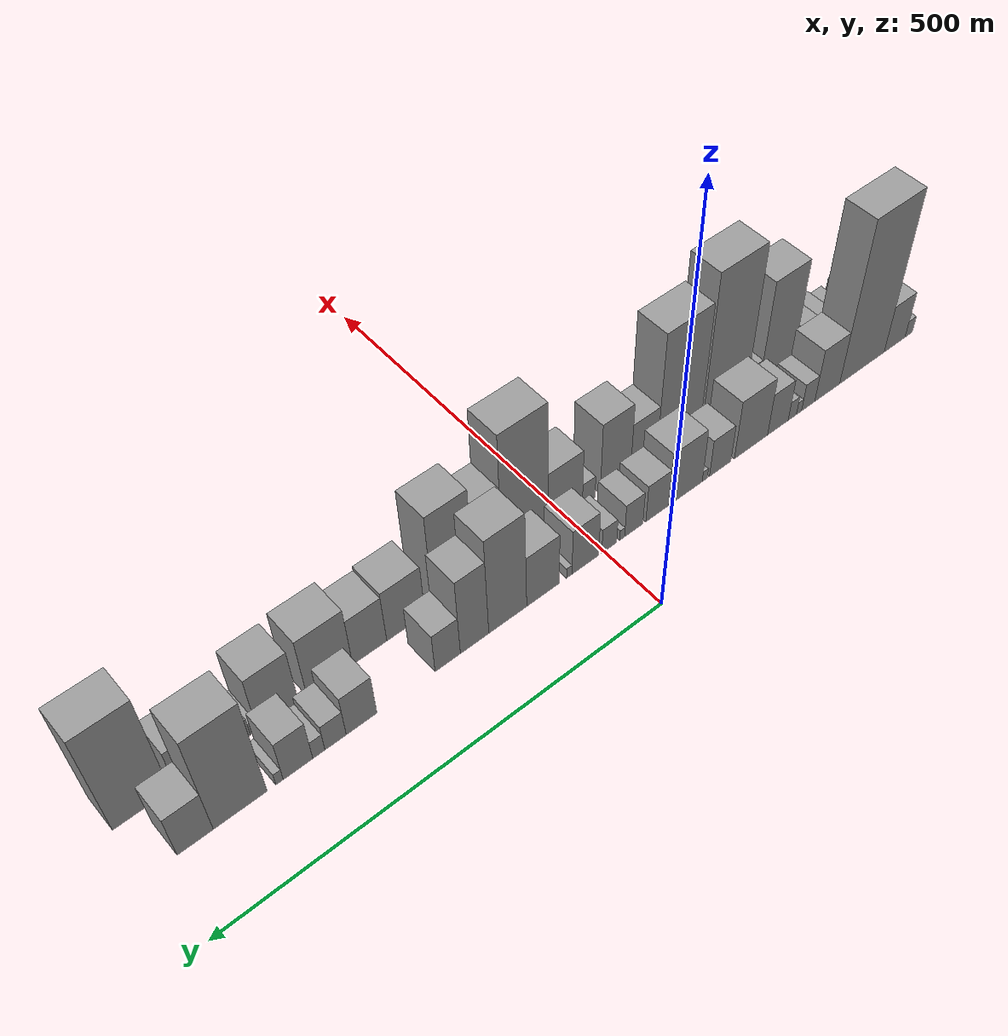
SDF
<sdf version="1.6">
 <world name="default">
  <scene>
   <sky><clouds><speed>12</speed></clouds></sky>
   <ambient>0.4 0.4 0.4 1</ambient>
   <background>0.7 0.7 0.7 1</background>
   <shadows>1</shadows>
  </scene>
  <gravity>0 0 -9.8066</gravity>
  <magnetic_field>6e-06 2.3e-05 -4.2e-05</magnetic_field>
  <physics default="0" name="default_physics" type="ode">
   <ode>
    <solver>
     <type>quick</type>
     <iters>10</iters>
     <sor>1.0</sor>
     <use_dynamic_moi_rescaling>0</use_dynamic_moi_rescaling>
    </solver>
    <constraints>
     <cfm>0</cfm>
     <erp>0.2</erp>
     <contact_max_correcting_vel>100</contact_max_correcting_vel>
     <contact_surface_layer>0.001</contact_surface_layer>
    </constraints>
   </ode>
   <max_step_size>0.004</max_step_size>
   <real_time_factor>1</real_time_factor>
   <real_time_update_rate>250</real_time_update_rate>
  </physics>
  <light name="sun" type="directional">
   <pose>0 0 10 0 0 0</pose>
   <diffuse>0.8 0.8 0.8 1</diffuse>
   <specular>0.2 0.2 0.2 1</specular>
   <attenuation>
    <range>1000</range>
    <constant>0.9</constant>
    <linear>0.01</linear>
    <quadratic>0.001</quadratic>
   </attenuation>
   <direction>-0.5 0.1 -0.9</direction>
  </light>
  <model name="building_1">
   <static>1</static>
   <pose>100.0000 -444.0386 0 0.000000 0.000000 0.000000</pose>
   <link name="link">
    <pose>0 0 12.00 0 0 0</pose>
    <collision name="collision"><geometry><box><size>40.0000 11.9228 24.0000</size></box></geometry></collision>
    <visual name="visual">
     <cast_shadows>0</cast_shadows>
     <geometry><box><size>40.0000 11.9228 24.0000</size></box></geometry>
     <material>
      <script>
       <uri>model://grey_wall/materials/scripts</uri>
       <uri>model://grey_wall/materials/textures</uri>
       <name>vrc/grey_wall</name>
      </script>
     </material>
    </visual>
   </link>
  </model>
  <model name="building_2">
   <static>1</static>
   <pose>100.0000 -421.1653 0 0.000000 0.000000 0.000000</pose>
   <link name="link">
    <pose>0 0 33.00 0 0 0</pose>
    <collision name="collision"><geometry><box><size>40.0000 33.8239 66.0000</size></box></geometry></collision>
    <visual name="visual">
     <cast_shadows>0</cast_shadows>
     <geometry><box><size>40.0000 33.8239 66.0000</size></box></geometry>
     <material>
      <script>
       <uri>model://grey_wall/materials/scripts</uri>
       <uri>model://grey_wall/materials/textures</uri>
       <name>vrc/grey_wall</name>
      </script>
     </material>
    </visual>
   </link>
  </model>
  <model name="building_3">
   <static>1</static>
   <pose>100.0000 -369.1145 0 0.000000 0.000000 0.000000</pose>
   <link name="link">
    <pose>0 0 111.00 0 0 0</pose>
    <collision name="collision"><geometry><box><size>40.0000 70.2777 222.0000</size></box></geometry></collision>
    <visual name="visual">
     <cast_shadows>0</cast_shadows>
     <geometry><box><size>40.0000 70.2777 222.0000</size></box></geometry>
     <material>
      <script>
       <uri>model://grey_wall/materials/scripts</uri>
       <uri>model://grey_wall/materials/textures</uri>
       <name>vrc/grey_wall</name>
      </script>
     </material>
    </visual>
   </link>
  </model>
  <model name="building_4">
   <static>1</static>
   <pose>100.0000 -314.7945 0 0.000000 0.000000 0.000000</pose>
   <link name="link">
    <pose>0 0 37.50 0 0 0</pose>
    <collision name="collision"><geometry><box><size>40.0000 38.3623 75.0000</size></box></geometry></collision>
    <visual name="visual">
     <cast_shadows>0</cast_shadows>
     <geometry><box><size>40.0000 38.3623 75.0000</size></box></geometry>
     <material>
      <script>
       <uri>model://grey_wall/materials/scripts</uri>
       <uri>model://grey_wall/materials/textures</uri>
       <name>vrc/grey_wall</name>
      </script>
     </material>
    </visual>
   </link>
  </model>
  <model name="building_5">
   <static>1</static>
   <pose>100.0000 -285.6695 0 0.000000 0.000000 0.000000</pose>
   <link name="link">
    <pose>0 0 19.50 0 0 0</pose>
    <collision name="collision"><geometry><box><size>40.0000 19.8878 39.0000</size></box></geometry></collision>
    <visual name="visual">
     <cast_shadows>0</cast_shadows>
     <geometry><box><size>40.0000 19.8878 39.0000</size></box></geometry>
     <material>
      <script>
       <uri>model://grey_wall/materials/scripts</uri>
       <uri>model://grey_wall/materials/textures</uri>
       <name>vrc/grey_wall</name>
      </script>
     </material>
    </visual>
   </link>
  </model>
  <model name="building_6">
   <static>1</static>
   <pose>100.0000 -271.8458 0 0.000000 0.000000 0.000000</pose>
   <link name="link">
    <pose>0 0 9.00 0 0 0</pose>
    <collision name="collision"><geometry><box><size>40.0000 7.7594 18.0000</size></box></geometry></collision>
    <visual name="visual">
     <cast_shadows>0</cast_shadows>
     <geometry><box><size>40.0000 7.7594 18.0000</size></box></geometry>
     <material>
      <script>
       <uri>model://grey_wall/materials/scripts</uri>
       <uri>model://grey_wall/materials/textures</uri>
       <name>vrc/grey_wall</name>
      </script>
     </material>
    </visual>
   </link>
  </model>
  <model name="building_7">
   <static>1</static>
   <pose>100.0000 -261.7881 0 0.000000 0.000000 0.000000</pose>
   <link name="link">
    <pose>0 0 13.50 0 0 0</pose>
    <collision name="collision"><geometry><box><size>40.0000 12.3560 27.0000</size></box></geometry></collision>
    <visual name="visual">
     <cast_shadows>0</cast_shadows>
     <geometry><box><size>40.0000 12.3560 27.0000</size></box></geometry>
     <material>
      <script>
       <uri>model://grey_wall/materials/scripts</uri>
       <uri>model://grey_wall/materials/textures</uri>
       <name>vrc/grey_wall</name>
      </script>
     </material>
    </visual>
   </link>
  </model>
  <model name="building_8">
   <static>1</static>
   <pose>100.0000 -240.3838 0 0.000000 0.000000 0.000000</pose>
   <link name="link">
    <pose>0 0 30.00 0 0 0</pose>
    <collision name="collision"><geometry><box><size>40.0000 30.4526 60.0000</size></box></geometry></collision>
    <visual name="visual">
     <cast_shadows>0</cast_shadows>
     <geometry><box><size>40.0000 30.4526 60.0000</size></box></geometry>
     <material>
      <script>
       <uri>model://grey_wall/materials/scripts</uri>
       <uri>model://grey_wall/materials/textures</uri>
       <name>vrc/grey_wall</name>
      </script>
     </material>
    </visual>
   </link>
  </model>
  <model name="building_9">
   <static>1</static>
   <pose>100.0000 -201.1493 0 0.000000 0.000000 0.000000</pose>
   <link name="link">
    <pose>0 0 42.00 0 0 0</pose>
    <collision name="collision"><geometry><box><size>40.0000 48.0162 84.0000</size></box></geometry></collision>
    <visual name="visual">
     <cast_shadows>0</cast_shadows>
     <geometry><box><size>40.0000 48.0162 84.0000</size></box></geometry>
     <material>
      <script>
       <uri>model://grey_wall/materials/scripts</uri>
       <uri>model://grey_wall/materials/textures</uri>
       <name>vrc/grey_wall</name>
      </script>
     </material>
    </visual>
   </link>
  </model>
  <model name="building_10">
   <static>1</static>
   <pose>100.0000 -157.0162 0 0.000000 0.000000 0.000000</pose>
   <link name="link">
    <pose>0 0 27.00 0 0 0</pose>
    <collision name="collision"><geometry><box><size>40.0000 30.2501 54.0000</size></box></geometry></collision>
    <visual name="visual">
     <cast_shadows>0</cast_shadows>
     <geometry><box><size>40.0000 30.2501 54.0000</size></box></geometry>
     <material>
      <script>
       <uri>model://grey_wall/materials/scripts</uri>
       <uri>model://grey_wall/materials/textures</uri>
       <name>vrc/grey_wall</name>
      </script>
     </material>
    </visual>
   </link>
  </model>
  <model name="building_11">
   <static>1</static>
   <pose>100.0000 -135.2753 0 0.000000 0.000000 0.000000</pose>
   <link name="link">
    <pose>0 0 7.50 0 0 0</pose>
    <collision name="collision"><geometry><box><size>40.0000 7.2317 15.0000</size></box></geometry></collision>
    <visual name="visual">
     <cast_shadows>0</cast_shadows>
     <geometry><box><size>40.0000 7.2317 15.0000</size></box></geometry>
     <material>
      <script>
       <uri>model://grey_wall/materials/scripts</uri>
       <uri>model://grey_wall/materials/textures</uri>
       <name>vrc/grey_wall</name>
      </script>
     </material>
    </visual>
   </link>
  </model>
  <model name="building_12">
   <static>1</static>
   <pose>100.0000 -108.6396 0 0.000000 0.000000 0.000000</pose>
   <link name="link">
    <pose>0 0 39.00 0 0 0</pose>
    <collision name="collision"><geometry><box><size>40.0000 46.0396 78.0000</size></box></geometry></collision>
    <visual name="visual">
     <cast_shadows>0</cast_shadows>
     <geometry><box><size>40.0000 46.0396 78.0000</size></box></geometry>
     <material>
      <script>
       <uri>model://grey_wall/materials/scripts</uri>
       <uri>model://grey_wall/materials/textures</uri>
       <name>vrc/grey_wall</name>
      </script>
     </material>
    </visual>
   </link>
  </model>
  <model name="building_13">
   <static>1</static>
   <pose>100.0000 -70.2083 0 0.000000 0.000000 0.000000</pose>
   <link name="link">
    <pose>0 0 27.00 0 0 0</pose>
    <collision name="collision"><geometry><box><size>40.0000 30.8231 54.0000</size></box></geometry></collision>
    <visual name="visual">
     <cast_shadows>0</cast_shadows>
     <geometry><box><size>40.0000 30.8231 54.0000</size></box></geometry>
     <material>
      <script>
       <uri>model://grey_wall/materials/scripts</uri>
       <uri>model://grey_wall/materials/textures</uri>
       <name>vrc/grey_wall</name>
      </script>
     </material>
    </visual>
   </link>
  </model>
  <model name="building_14">
   <static>1</static>
   <pose>100.0000 -38.7486 0 0.000000 0.000000 0.000000</pose>
   <link name="link">
    <pose>0 0 24.00 0 0 0</pose>
    <collision name="collision"><geometry><box><size>40.0000 24.0963 48.0000</size></box></geometry></collision>
    <visual name="visual">
     <cast_shadows>0</cast_shadows>
     <geometry><box><size>40.0000 24.0963 48.0000</size></box></geometry>
     <material>
      <script>
       <uri>model://grey_wall/materials/scripts</uri>
       <uri>model://grey_wall/materials/textures</uri>
       <name>vrc/grey_wall</name>
      </script>
     </material>
    </visual>
   </link>
  </model>
  <model name="building_15">
   <static>1</static>
   <pose>100.0000 -23.4992 0 0.000000 0.000000 0.000000</pose>
   <link name="link">
    <pose>0 0 7.50 0 0 0</pose>
    <collision name="collision"><geometry><box><size>40.0000 6.4025 15.0000</size></box></geometry></collision>
    <visual name="visual">
     <cast_shadows>0</cast_shadows>
     <geometry><box><size>40.0000 6.4025 15.0000</size></box></geometry>
     <material>
      <script>
       <uri>model://grey_wall/materials/scripts</uri>
       <uri>model://grey_wall/materials/textures</uri>
       <name>vrc/grey_wall</name>
      </script>
     </material>
    </visual>
   </link>
  </model>
  <model name="building_16">
   <static>1</static>
   <pose>100.0000 -6.6108 0 0.000000 0.000000 0.000000</pose>
   <link name="link">
    <pose>0 0 18.00 0 0 0</pose>
    <collision name="collision"><geometry><box><size>40.0000 19.3743 36.0000</size></box></geometry></collision>
    <visual name="visual">
     <cast_shadows>0</cast_shadows>
     <geometry><box><size>40.0000 19.3743 36.0000</size></box></geometry>
     <material>
      <script>
       <uri>model://grey_wall/materials/scripts</uri>
       <uri>model://grey_wall/materials/textures</uri>
       <name>vrc/grey_wall</name>
      </script>
     </material>
    </visual>
   </link>
  </model>
  <model name="building_17">
   <static>1</static>
   <pose>100.0000 24.1132 0 0.000000 0.000000 0.000000</pose>
   <link name="link">
    <pose>0 0 33.00 0 0 0</pose>
    <collision name="collision"><geometry><box><size>40.0000 34.0737 66.0000</size></box></geometry></collision>
    <visual name="visual">
     <cast_shadows>0</cast_shadows>
     <geometry><box><size>40.0000 34.0737 66.0000</size></box></geometry>
     <material>
      <script>
       <uri>model://grey_wall/materials/scripts</uri>
       <uri>model://grey_wall/materials/textures</uri>
       <name>vrc/grey_wall</name>
      </script>
     </material>
    </visual>
   </link>
  </model>
  <model name="building_18">
   <static>1</static>
   <pose>100.0000 44.6355 0 0.000000 0.000000 0.000000</pose>
   <link name="link">
    <pose>0 0 7.50 0 0 0</pose>
    <collision name="collision"><geometry><box><size>40.0000 6.9708 15.0000</size></box></geometry></collision>
    <visual name="visual">
     <cast_shadows>0</cast_shadows>
     <geometry><box><size>40.0000 6.9708 15.0000</size></box></geometry>
     <material>
      <script>
       <uri>model://grey_wall/materials/scripts</uri>
       <uri>model://grey_wall/materials/textures</uri>
       <name>vrc/grey_wall</name>
      </script>
     </material>
    </visual>
   </link>
  </model>
  <model name="building_19">
   <static>1</static>
   <pose>100.0000 77.3943 0 0.000000 0.000000 0.000000</pose>
   <link name="link">
    <pose>0 0 37.50 0 0 0</pose>
    <collision name="collision"><geometry><box><size>40.0000 40.5467 75.0000</size></box></geometry></collision>
    <visual name="visual">
     <cast_shadows>0</cast_shadows>
     <geometry><box><size>40.0000 40.5467 75.0000</size></box></geometry>
     <material>
      <script>
       <uri>model://grey_wall/materials/scripts</uri>
       <uri>model://grey_wall/materials/textures</uri>
       <name>vrc/grey_wall</name>
      </script>
     </material>
    </visual>
   </link>
  </model>
  <model name="building_20">
   <static>1</static>
   <pose>100.0000 120.6113 0 0.000000 0.000000 0.000000</pose>
   <link name="link">
    <pose>0 0 70.50 0 0 0</pose>
    <collision name="collision"><geometry><box><size>40.0000 45.8873 141.0000</size></box></geometry></collision>
    <visual name="visual">
     <cast_shadows>0</cast_shadows>
     <geometry><box><size>40.0000 45.8873 141.0000</size></box></geometry>
     <material>
      <script>
       <uri>model://grey_wall/materials/scripts</uri>
       <uri>model://grey_wall/materials/textures</uri>
       <name>vrc/grey_wall</name>
      </script>
     </material>
    </visual>
   </link>
  </model>
  <model name="building_21">
   <static>1</static>
   <pose>100.0000 160.3375 0 0.000000 0.000000 0.000000</pose>
   <link name="link">
    <pose>0 0 55.50 0 0 0</pose>
    <collision name="collision"><geometry><box><size>40.0000 33.5652 111.0000</size></box></geometry></collision>
    <visual name="visual">
     <cast_shadows>0</cast_shadows>
     <geometry><box><size>40.0000 33.5652 111.0000</size></box></geometry>
     <material>
      <script>
       <uri>model://grey_wall/materials/scripts</uri>
       <uri>model://grey_wall/materials/textures</uri>
       <name>vrc/grey_wall</name>
      </script>
     </material>
    </visual>
   </link>
  </model>
  <model name="building_22">
   <static>1</static>
   <pose>100.0000 191.8088 0 0.000000 0.000000 0.000000</pose>
   <link name="link">
    <pose>0 0 28.50 0 0 0</pose>
    <collision name="collision"><geometry><box><size>40.0000 29.3773 57.0000</size></box></geometry></collision>
    <visual name="visual">
     <cast_shadows>0</cast_shadows>
     <geometry><box><size>40.0000 29.3773 57.0000</size></box></geometry>
     <material>
      <script>
       <uri>model://grey_wall/materials/scripts</uri>
       <uri>model://grey_wall/materials/textures</uri>
       <name>vrc/grey_wall</name>
      </script>
     </material>
    </visual>
   </link>
  </model>
  <model name="building_23">
   <static>1</static>
   <pose>100.0000 288.8889 0 0.000000 0.000000 0.000000</pose>
   <link name="link">
    <pose>0 0 30.00 0 0 0</pose>
    <collision name="collision"><geometry><box><size>40.0000 33.5943 60.0000</size></box></geometry></collision>
    <visual name="visual">
     <cast_shadows>0</cast_shadows>
     <geometry><box><size>40.0000 33.5943 60.0000</size></box></geometry>
     <material>
      <script>
       <uri>model://grey_wall/materials/scripts</uri>
       <uri>model://grey_wall/materials/textures</uri>
       <name>vrc/grey_wall</name>
      </script>
     </material>
    </visual>
   </link>
  </model>
  <model name="building_24">
   <static>1</static>
   <pose>100.0000 317.1460 0 0.000000 0.000000 0.000000</pose>
   <link name="link">
    <pose>0 0 19.50 0 0 0</pose>
    <collision name="collision"><geometry><box><size>40.0000 22.9201 39.0000</size></box></geometry></collision>
    <visual name="visual">
     <cast_shadows>0</cast_shadows>
     <geometry><box><size>40.0000 22.9201 39.0000</size></box></geometry>
     <material>
      <script>
       <uri>model://grey_wall/materials/scripts</uri>
       <uri>model://grey_wall/materials/textures</uri>
       <name>vrc/grey_wall</name>
      </script>
     </material>
    </visual>
   </link>
  </model>
  <model name="building_25">
   <static>1</static>
   <pose>100.0000 335.0590 0 0.000000 0.000000 0.000000</pose>
   <link name="link">
    <pose>0 0 13.50 0 0 0</pose>
    <collision name="collision"><geometry><box><size>40.0000 12.9059 27.0000</size></box></geometry></collision>
    <visual name="visual">
     <cast_shadows>0</cast_shadows>
     <geometry><box><size>40.0000 12.9059 27.0000</size></box></geometry>
     <material>
      <script>
       <uri>model://grey_wall/materials/scripts</uri>
       <uri>model://grey_wall/materials/textures</uri>
       <name>vrc/grey_wall</name>
      </script>
     </material>
    </visual>
   </link>
  </model>
  <model name="building_26">
   <static>1</static>
   <pose>100.0000 357.0268 0 0.000000 0.000000 0.000000</pose>
   <link name="link">
    <pose>0 0 30.00 0 0 0</pose>
    <collision name="collision"><geometry><box><size>40.0000 31.0297 60.0000</size></box></geometry></collision>
    <visual name="visual">
     <cast_shadows>0</cast_shadows>
     <geometry><box><size>40.0000 31.0297 60.0000</size></box></geometry>
     <material>
      <script>
       <uri>model://grey_wall/materials/scripts</uri>
       <uri>model://grey_wall/materials/textures</uri>
       <name>vrc/grey_wall</name>
      </script>
     </material>
    </visual>
   </link>
  </model>
  <model name="building_27">
   <static>1</static>
   <pose>100.0000 376.3913 0 0.000000 0.000000 0.000000</pose>
   <link name="link">
    <pose>0 0 9.00 0 0 0</pose>
    <collision name="collision"><geometry><box><size>40.0000 7.6993 18.0000</size></box></geometry></collision>
    <visual name="visual">
     <cast_shadows>0</cast_shadows>
     <geometry><box><size>40.0000 7.6993 18.0000</size></box></geometry>
     <material>
      <script>
       <uri>model://grey_wall/materials/scripts</uri>
       <uri>model://grey_wall/materials/textures</uri>
       <name>vrc/grey_wall</name>
      </script>
     </material>
    </visual>
   </link>
  </model>
  <model name="building_28">
   <static>1</static>
   <pose>100.0000 416.4232 0 0.000000 0.000000 0.000000</pose>
   <link name="link">
    <pose>0 0 73.50 0 0 0</pose>
    <collision name="collision"><geometry><box><size>40.0000 54.3644 147.0000</size></box></geometry></collision>
    <visual name="visual">
     <cast_shadows>0</cast_shadows>
     <geometry><box><size>40.0000 54.3644 147.0000</size></box></geometry>
     <material>
      <script>
       <uri>model://grey_wall/materials/scripts</uri>
       <uri>model://grey_wall/materials/textures</uri>
       <name>vrc/grey_wall</name>
      </script>
     </material>
    </visual>
   </link>
  </model>
  <model name="building_29">
   <static>1</static>
   <pose>100.0000 461.4287 0 0.000000 0.000000 0.000000</pose>
   <link name="link">
    <pose>0 0 31.50 0 0 0</pose>
    <collision name="collision"><geometry><box><size>40.0000 35.6467 63.0000</size></box></geometry></collision>
    <visual name="visual">
     <cast_shadows>0</cast_shadows>
     <geometry><box><size>40.0000 35.6467 63.0000</size></box></geometry>
     <material>
      <script>
       <uri>model://grey_wall/materials/scripts</uri>
       <uri>model://grey_wall/materials/textures</uri>
       <name>vrc/grey_wall</name>
      </script>
     </material>
    </visual>
   </link>
  </model>
  <model name="building_30">
   <static>1</static>
   <pose>155.0000 -441.4022 0 0.000000 0.000000 0.000000</pose>
   <link name="link">
    <pose>0 0 15.00 0 0 0</pose>
    <collision name="collision"><geometry><box><size>40.0000 17.1955 30.0000</size></box></geometry></collision>
    <visual name="visual">
     <cast_shadows>0</cast_shadows>
     <geometry><box><size>40.0000 17.1955 30.0000</size></box></geometry>
     <material>
      <script>
       <uri>model://grey_wall/materials/scripts</uri>
       <uri>model://grey_wall/materials/textures</uri>
       <name>vrc/grey_wall</name>
      </script>
     </material>
    </visual>
   </link>
  </model>
  <model name="building_31">
   <static>1</static>
   <pose>155.0000 -422.5374 0 0.000000 0.000000 0.000000</pose>
   <link name="link">
    <pose>0 0 18.00 0 0 0</pose>
    <collision name="collision"><geometry><box><size>40.0000 20.5342 36.0000</size></box></geometry></collision>
    <visual name="visual">
     <cast_shadows>0</cast_shadows>
     <geometry><box><size>40.0000 20.5342 36.0000</size></box></geometry>
     <material>
      <script>
       <uri>model://grey_wall/materials/scripts</uri>
       <uri>model://grey_wall/materials/textures</uri>
       <name>vrc/grey_wall</name>
      </script>
     </material>
    </visual>
   </link>
  </model>
  <model name="building_32">
   <static>1</static>
   <pose>155.0000 -393.6739 0 0.000000 0.000000 0.000000</pose>
   <link name="link">
    <pose>0 0 15.00 0 0 0</pose>
    <collision name="collision"><geometry><box><size>40.0000 17.1926 30.0000</size></box></geometry></collision>
    <visual name="visual">
     <cast_shadows>0</cast_shadows>
     <geometry><box><size>40.0000 17.1926 30.0000</size></box></geometry>
     <material>
      <script>
       <uri>model://grey_wall/materials/scripts</uri>
       <uri>model://grey_wall/materials/textures</uri>
       <name>vrc/grey_wall</name>
      </script>
     </material>
    </visual>
   </link>
  </model>
  <model name="building_33">
   <static>1</static>
   <pose>155.0000 -370.4183 0 0.000000 0.000000 0.000000</pose>
   <link name="link">
    <pose>0 0 18.00 0 0 0</pose>
    <collision name="collision"><geometry><box><size>40.0000 19.3187 36.0000</size></box></geometry></collision>
    <visual name="visual">
     <cast_shadows>0</cast_shadows>
     <geometry><box><size>40.0000 19.3187 36.0000</size></box></geometry>
     <material>
      <script>
       <uri>model://grey_wall/materials/scripts</uri>
       <uri>model://grey_wall/materials/textures</uri>
       <name>vrc/grey_wall</name>
      </script>
     </material>
    </visual>
   </link>
  </model>
  <model name="building_34">
   <static>1</static>
   <pose>155.0000 -338.1795 0 0.000000 0.000000 0.000000</pose>
   <link name="link">
    <pose>0 0 24.00 0 0 0</pose>
    <collision name="collision"><geometry><box><size>40.0000 25.1588 48.0000</size></box></geometry></collision>
    <visual name="visual">
     <cast_shadows>0</cast_shadows>
     <geometry><box><size>40.0000 25.1588 48.0000</size></box></geometry>
     <material>
      <script>
       <uri>model://grey_wall/materials/scripts</uri>
       <uri>model://grey_wall/materials/textures</uri>
       <name>vrc/grey_wall</name>
      </script>
     </material>
    </visual>
   </link>
  </model>
  <model name="building_35">
   <static>1</static>
   <pose>155.0000 -295.5371 0 0.000000 0.000000 0.000000</pose>
   <link name="link">
    <pose>0 0 72.00 0 0 0</pose>
    <collision name="collision"><geometry><box><size>40.0000 50.1261 144.0000</size></box></geometry></collision>
    <visual name="visual">
     <cast_shadows>0</cast_shadows>
     <geometry><box><size>40.0000 50.1261 144.0000</size></box></geometry>
     <material>
      <script>
       <uri>model://grey_wall/materials/scripts</uri>
       <uri>model://grey_wall/materials/textures</uri>
       <name>vrc/grey_wall</name>
      </script>
     </material>
    </visual>
   </link>
  </model>
  <model name="building_36">
   <static>1</static>
   <pose>155.0000 -260.2207 0 0.000000 0.000000 0.000000</pose>
   <link name="link">
    <pose>0 0 18.00 0 0 0</pose>
    <collision name="collision"><geometry><box><size>40.0000 20.5068 36.0000</size></box></geometry></collision>
    <visual name="visual">
     <cast_shadows>0</cast_shadows>
     <geometry><box><size>40.0000 20.5068 36.0000</size></box></geometry>
     <material>
      <script>
       <uri>model://grey_wall/materials/scripts</uri>
       <uri>model://grey_wall/materials/textures</uri>
       <name>vrc/grey_wall</name>
      </script>
     </material>
    </visual>
   </link>
  </model>
  <model name="building_37">
   <static>1</static>
   <pose>155.0000 -218.1202 0 0.000000 0.000000 0.000000</pose>
   <link name="link">
    <pose>0 0 103.50 0 0 0</pose>
    <collision name="collision"><geometry><box><size>40.0000 63.6941 207.0000</size></box></geometry></collision>
    <visual name="visual">
     <cast_shadows>0</cast_shadows>
     <geometry><box><size>40.0000 63.6941 207.0000</size></box></geometry>
     <material>
      <script>
       <uri>model://grey_wall/materials/scripts</uri>
       <uri>model://grey_wall/materials/textures</uri>
       <name>vrc/grey_wall</name>
      </script>
     </material>
    </visual>
   </link>
  </model>
  <model name="building_38">
   <static>1</static>
   <pose>155.0000 -152.4627 0 0.000000 0.000000 0.000000</pose>
   <link name="link">
    <pose>0 0 85.50 0 0 0</pose>
    <collision name="collision"><geometry><box><size>40.0000 61.6210 171.0000</size></box></geometry></collision>
    <visual name="visual">
     <cast_shadows>0</cast_shadows>
     <geometry><box><size>40.0000 61.6210 171.0000</size></box></geometry>
     <material>
      <script>
       <uri>model://grey_wall/materials/scripts</uri>
       <uri>model://grey_wall/materials/textures</uri>
       <name>vrc/grey_wall</name>
      </script>
     </material>
    </visual>
   </link>
  </model>
  <model name="building_39">
   <static>1</static>
   <pose>155.0000 -103.5300 0 0.000000 0.000000 0.000000</pose>
   <link name="link">
    <pose>0 0 36.00 0 0 0</pose>
    <collision name="collision"><geometry><box><size>40.0000 36.2444 72.0000</size></box></geometry></collision>
    <visual name="visual">
     <cast_shadows>0</cast_shadows>
     <geometry><box><size>40.0000 36.2444 72.0000</size></box></geometry>
     <material>
      <script>
       <uri>model://grey_wall/materials/scripts</uri>
       <uri>model://grey_wall/materials/textures</uri>
       <name>vrc/grey_wall</name>
      </script>
     </material>
    </visual>
   </link>
  </model>
  <model name="building_40">
   <static>1</static>
   <pose>155.0000 -65.0775 0 0.000000 0.000000 0.000000</pose>
   <link name="link">
    <pose>0 0 51.00 0 0 0</pose>
    <collision name="collision"><geometry><box><size>40.0000 40.6607 102.0000</size></box></geometry></collision>
    <visual name="visual">
     <cast_shadows>0</cast_shadows>
     <geometry><box><size>40.0000 40.6607 102.0000</size></box></geometry>
     <material>
      <script>
       <uri>model://grey_wall/materials/scripts</uri>
       <uri>model://grey_wall/materials/textures</uri>
       <name>vrc/grey_wall</name>
      </script>
     </material>
    </visual>
   </link>
  </model>
  <model name="building_41">
   <static>1</static>
   <pose>155.0000 -29.3639 0 0.000000 0.000000 0.000000</pose>
   <link name="link">
    <pose>0 0 16.50 0 0 0</pose>
    <collision name="collision"><geometry><box><size>40.0000 16.7666 33.0000</size></box></geometry></collision>
    <visual name="visual">
     <cast_shadows>0</cast_shadows>
     <geometry><box><size>40.0000 16.7666 33.0000</size></box></geometry>
     <material>
      <script>
       <uri>model://grey_wall/materials/scripts</uri>
       <uri>model://grey_wall/materials/textures</uri>
       <name>vrc/grey_wall</name>
      </script>
     </material>
    </visual>
   </link>
  </model>
  <model name="building_42">
   <static>1</static>
   <pose>155.0000 1.2300 0 0.000000 0.000000 0.000000</pose>
   <link name="link">
    <pose>0 0 42.00 0 0 0</pose>
    <collision name="collision"><geometry><box><size>40.0000 44.4213 84.0000</size></box></geometry></collision>
    <visual name="visual">
     <cast_shadows>0</cast_shadows>
     <geometry><box><size>40.0000 44.4213 84.0000</size></box></geometry>
     <material>
      <script>
       <uri>model://grey_wall/materials/scripts</uri>
       <uri>model://grey_wall/materials/textures</uri>
       <name>vrc/grey_wall</name>
      </script>
     </material>
    </visual>
   </link>
  </model>
  <model name="building_43">
   <static>1</static>
   <pose>155.0000 52.6209 0 0.000000 0.000000 0.000000</pose>
   <link name="link">
    <pose>0 0 91.50 0 0 0</pose>
    <collision name="collision"><geometry><box><size>40.0000 58.3603 183.0000</size></box></geometry></collision>
    <visual name="visual">
     <cast_shadows>0</cast_shadows>
     <geometry><box><size>40.0000 58.3603 183.0000</size></box></geometry>
     <material>
      <script>
       <uri>model://grey_wall/materials/scripts</uri>
       <uri>model://grey_wall/materials/textures</uri>
       <name>vrc/grey_wall</name>
      </script>
     </material>
    </visual>
   </link>
  </model>
  <model name="building_44">
   <static>1</static>
   <pose>155.0000 99.4359 0 0.000000 0.000000 0.000000</pose>
   <link name="link">
    <pose>0 0 55.50 0 0 0</pose>
    <collision name="collision"><geometry><box><size>40.0000 35.2698 111.0000</size></box></geometry></collision>
    <visual name="visual">
     <cast_shadows>0</cast_shadows>
     <geometry><box><size>40.0000 35.2698 111.0000</size></box></geometry>
     <material>
      <script>
       <uri>model://grey_wall/materials/scripts</uri>
       <uri>model://grey_wall/materials/textures</uri>
       <name>vrc/grey_wall</name>
      </script>
     </material>
    </visual>
   </link>
  </model>
  <model name="building_45">
   <static>1</static>
   <pose>155.0000 140.9866 0 0.000000 0.000000 0.000000</pose>
   <link name="link">
    <pose>0 0 69.00 0 0 0</pose>
    <collision name="collision"><geometry><box><size>40.0000 47.8315 138.0000</size></box></geometry></collision>
    <visual name="visual">
     <cast_shadows>0</cast_shadows>
     <geometry><box><size>40.0000 47.8315 138.0000</size></box></geometry>
     <material>
      <script>
       <uri>model://grey_wall/materials/scripts</uri>
       <uri>model://grey_wall/materials/textures</uri>
       <name>vrc/grey_wall</name>
      </script>
     </material>
    </visual>
   </link>
  </model>
  <model name="building_46">
   <static>1</static>
   <pose>155.0000 197.2045 0 0.000000 0.000000 0.000000</pose>
   <link name="link">
    <pose>0 0 37.50 0 0 0</pose>
    <collision name="collision"><geometry><box><size>40.0000 44.6044 75.0000</size></box></geometry></collision>
    <visual name="visual">
     <cast_shadows>0</cast_shadows>
     <geometry><box><size>40.0000 44.6044 75.0000</size></box></geometry>
     <material>
      <script>
       <uri>model://grey_wall/materials/scripts</uri>
       <uri>model://grey_wall/materials/textures</uri>
       <name>vrc/grey_wall</name>
      </script>
     </material>
    </visual>
   </link>
  </model>
  <model name="building_47">
   <static>1</static>
   <pose>155.0000 238.9132 0 0.000000 0.000000 0.000000</pose>
   <link name="link">
    <pose>0 0 34.50 0 0 0</pose>
    <collision name="collision"><geometry><box><size>40.0000 38.8131 69.0000</size></box></geometry></collision>
    <visual name="visual">
     <cast_shadows>0</cast_shadows>
     <geometry><box><size>40.0000 38.8131 69.0000</size></box></geometry>
     <material>
      <script>
       <uri>model://grey_wall/materials/scripts</uri>
       <uri>model://grey_wall/materials/textures</uri>
       <name>vrc/grey_wall</name>
      </script>
     </material>
    </visual>
   </link>
  </model>
  <model name="building_48">
   <static>1</static>
   <pose>155.0000 283.6288 0 0.000000 0.000000 0.000000</pose>
   <link name="link">
    <pose>0 0 43.50 0 0 0</pose>
    <collision name="collision"><geometry><box><size>40.0000 50.6180 87.0000</size></box></geometry></collision>
    <visual name="visual">
     <cast_shadows>0</cast_shadows>
     <geometry><box><size>40.0000 50.6180 87.0000</size></box></geometry>
     <material>
      <script>
       <uri>model://grey_wall/materials/scripts</uri>
       <uri>model://grey_wall/materials/textures</uri>
       <name>vrc/grey_wall</name>
      </script>
     </material>
    </visual>
   </link>
  </model>
  <model name="building_49">
   <static>1</static>
   <pose>155.0000 339.9129 0 0.000000 0.000000 0.000000</pose>
   <link name="link">
    <pose>0 0 40.50 0 0 0</pose>
    <collision name="collision"><geometry><box><size>40.0000 43.9503 81.0000</size></box></geometry></collision>
    <visual name="visual">
     <cast_shadows>0</cast_shadows>
     <geometry><box><size>40.0000 43.9503 81.0000</size></box></geometry>
     <material>
      <script>
       <uri>model://grey_wall/materials/scripts</uri>
       <uri>model://grey_wall/materials/textures</uri>
       <name>vrc/grey_wall</name>
      </script>
     </material>
    </visual>
   </link>
  </model>
  <model name="building_50">
   <static>1</static>
   <pose>155.0000 365.5615 0 0.000000 0.000000 0.000000</pose>
   <link name="link">
    <pose>0 0 9.00 0 0 0</pose>
    <collision name="collision"><geometry><box><size>40.0000 7.3469 18.0000</size></box></geometry></collision>
    <visual name="visual">
     <cast_shadows>0</cast_shadows>
     <geometry><box><size>40.0000 7.3469 18.0000</size></box></geometry>
     <material>
      <script>
       <uri>model://grey_wall/materials/scripts</uri>
       <uri>model://grey_wall/materials/textures</uri>
       <name>vrc/grey_wall</name>
      </script>
     </material>
    </visual>
   </link>
  </model>
  <model name="building_51">
   <static>1</static>
   <pose>155.0000 375.2966 0 0.000000 0.000000 0.000000</pose>
   <link name="link">
    <pose>0 0 13.50 0 0 0</pose>
    <collision name="collision"><geometry><box><size>40.0000 12.1233 27.0000</size></box></geometry></collision>
    <visual name="visual">
     <cast_shadows>0</cast_shadows>
     <geometry><box><size>40.0000 12.1233 27.0000</size></box></geometry>
     <material>
      <script>
       <uri>model://grey_wall/materials/scripts</uri>
       <uri>model://grey_wall/materials/textures</uri>
       <name>vrc/grey_wall</name>
      </script>
     </material>
    </visual>
   </link>
  </model>
  <model name="building_52">
   <static>1</static>
   <pose>155.0000 397.6055 0 0.000000 0.000000 0.000000</pose>
   <link name="link">
    <pose>0 0 28.50 0 0 0</pose>
    <collision name="collision"><geometry><box><size>40.0000 32.4947 57.0000</size></box></geometry></collision>
    <visual name="visual">
     <cast_shadows>0</cast_shadows>
     <geometry><box><size>40.0000 32.4947 57.0000</size></box></geometry>
     <material>
      <script>
       <uri>model://grey_wall/materials/scripts</uri>
       <uri>model://grey_wall/materials/textures</uri>
       <name>vrc/grey_wall</name>
      </script>
     </material>
    </visual>
   </link>
  </model>
  <model name="building_53">
   <static>1</static>
   <pose>155.0000 429.9714 0 0.000000 0.000000 0.000000</pose>
   <link name="link">
    <pose>0 0 28.50 0 0 0</pose>
    <collision name="collision"><geometry><box><size>40.0000 32.2370 57.0000</size></box></geometry></collision>
    <visual name="visual">
     <cast_shadows>0</cast_shadows>
     <geometry><box><size>40.0000 32.2370 57.0000</size></box></geometry>
     <material>
      <script>
       <uri>model://grey_wall/materials/scripts</uri>
       <uri>model://grey_wall/materials/textures</uri>
       <name>vrc/grey_wall</name>
      </script>
     </material>
    </visual>
   </link>
  </model>
  <model name="building_54">
   <static>1</static>
   <pose>155.0000 479.6275 0 0.000000 0.000000 0.000000</pose>
   <link name="link">
    <pose>0 0 75.00 0 0 0</pose>
    <collision name="collision"><geometry><box><size>40.0000 57.0754 150.0000</size></box></geometry></collision>
    <visual name="visual">
     <cast_shadows>0</cast_shadows>
     <geometry><box><size>40.0000 57.0754 150.0000</size></box></geometry>
     <material>
      <script>
       <uri>model://grey_wall/materials/scripts</uri>
       <uri>model://grey_wall/materials/textures</uri>
       <name>vrc/grey_wall</name>
      </script>
     </material>
    </visual>
   </link>
  </model>
 </world>
</sdf>
